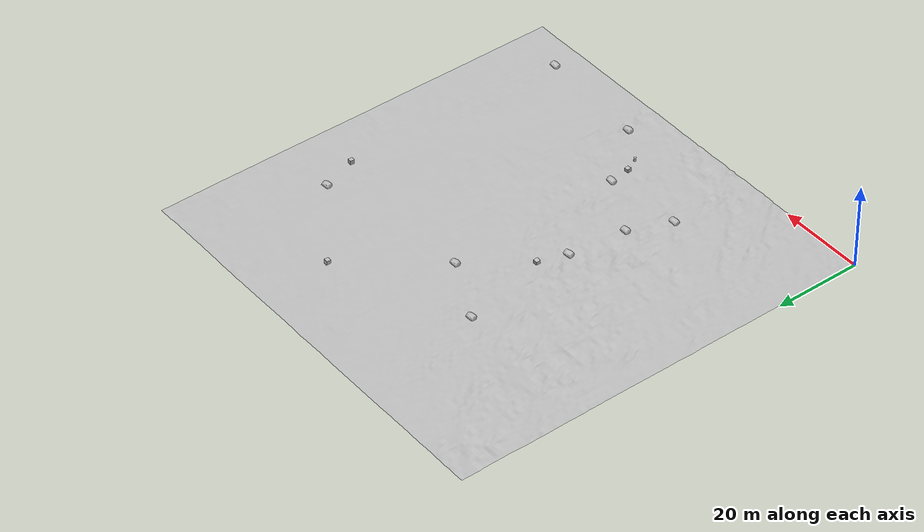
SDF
<sdf version="1.4">
 <world name="default">
  <include><uri>model://sun</uri></include>
  <scene>
   <sky><time>10</time><clouds><speed>5</speed><direction>1.14</direction><humidity>0.3</humidity></clouds></sky>
  </scene>
  <include><uri>model://srvss_terrain1</uri></include>
  <include>
   <uri>model://rock1</uri>
   <pose>38.498 42.9853 0.135408 -0.0690086 -0.00288347 0.09819</pose>
   <scale>3.26647 3.26647 3.26647</scale>
   <name>object0</name>
  </include>
  <include>
   <uri>model://rock1</uri>
   <pose>33.0939 19.9607 0.202484 0.0887613 -0.0952056 -0.025514</pose>
   <scale>4.94697 4.94697 4.94697</scale>
   <name>object1</name>
  </include>
  <include>
   <uri>model://cube1</uri>
   <pose>38.8941 49.035 0.342254 -0.0889441 -0.0839707 0.0203672</pose>
   <scale>1.27788 1.27788 1.27788</scale>
   <name>object2</name>
  </include>
  <include>
   <uri>model://rock1</uri>
   <pose>85.7588 68.1713 0.16207 0.0360686 0.0490892 0.0290427</pose>
   <scale>1.38152 1.38152 1.38152</scale>
   <name>object4</name>
  </include>
  <include>
   <uri>model://cube1</uri>
   <pose>87.1606 59.337 0.161598 0.0352617 0.0553567 -0.0990931</pose>
   <scale>4.8606 4.8606 4.8606</scale>
   <name>object5</name>
  </include>
  <include>
   <uri>model://rock1</uri>
   <pose>87.9382 6.48509 0.204472 -0.0092928 -0.0998686 -0.0614576</pose>
   <scale>2.566 2.566 2.566</scale>
   <name>object6</name>
  </include>
  <include>
   <uri>model://rock1</uri>
   <pose>50.8814 21.562 0.225388 0.00358151 -0.0877945 -0.098994</pose>
   <scale>1.64964 1.64964 1.64964</scale>
   <name>object8</name>
  </include>
  <include>
   <uri>model://rock1</uri>
   <pose>35.6286 69.8149 0.210079 0.0325116 0.0371902 0.0208792</pose>
   <scale>1.92257 1.92257 1.92257</scale>
   <name>object9</name>
  </include>
  <include>
   <uri>model://rock1</uri>
   <pose>50.2865 62.4686 0.261468 0.0636836 0.0235537 -0.0217107</pose>
   <scale>2.53048 2.53048 2.53048</scale>
   <name>object11</name>
  </include>
  <include>
   <uri>model://rock1</uri>
   <pose>36.9031 29.4781 0.266919 0.0082543 0.0508857 -0.0790072</pose>
   <scale>2.85484 2.85484 2.85484</scale>
   <name>object12</name>
  </include>
  <include>
   <uri>model://cube1</uri>
   <pose>49.9376 16.2253 0.193489 -0.0691621 0.0900228 0.0857961</pose>
   <scale>2.91321 2.91321 2.91321</scale>
   <name>object13</name>
  </include>
  <include>
   <uri>model://barrel1</uri>
   <pose>52.0709 13.6267 0.261802 -0.0180146 -0.0928671 0.0332701</pose>
   <scale>3.28357 3.28357 3.28357</scale>
   <name>object14</name>
  </include>
  <include>
   <uri>model://cube1</uri>
   <pose>64.911 81.6962 0.125605 0.0697094 -0.0650152 -0.0170972</pose>
   <scale>1.55437 1.55437 1.55437</scale>
   <name>object16</name>
  </include>
  <include>
   <uri>model://rock1</uri>
   <pose>61.3748 8.43569 0.222304 0.0455109 0.0147118 -0.0526768</pose>
   <scale>4.36306 4.36306 4.36306</scale>
   <name>object18</name>
  </include>
 </world>
</sdf>

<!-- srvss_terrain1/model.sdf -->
<sdf version="1.4">
    <model name="terrain">
        <static>true</static>
        <link name="terrain1">
            <pose>0 0 0 0 0 0</pose>
            <collision name="terrain1_collision">
                <geometry>
                    <mesh>
                        <uri>model://srvss_terrain1/meshes/terrain1.dae</uri>
                    </mesh>
                </geometry>
		<surface>
		  <friction>
		    <ode>
		      <mu>100</mu>
		      <mu2>100</mu2>
		    </ode>
		  </friction>
		</surface>
            </collision>
            <visual name="terrain1_visual">
                <geometry>
                    <mesh>
                        <uri>model://srvss_terrain1/meshes/terrain1.dae</uri>
                    </mesh>
                </geometry>
                <material>
                    <script>
                        <uri>model://srvss_terrain1/materials/scripts</uri>
                        <uri>model://srvss_terrain1/materials/textures</uri>
                        <name>terrain/terrain1</name>
                    </script>
                </material>
            </visual>
        </link>
    </model>
</sdf>

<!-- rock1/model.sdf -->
<sdf version="1.4">
  <model name="rock1">
    <static>true</static>
    <link name="link">
      <collision name="collision">
        <geometry>
          <mesh>
		<uri>model://rock1/models/rock1.dae</uri>
		<scale>1 1 1</scale>
          </mesh>
        </geometry>
      </collision>
      <visual name="visual">
         <geometry>
          <mesh>
		<uri>model://rock1/models/rock1.dae</uri>
		<scale>1 1 1</scale>
          </mesh>
        </geometry>
      </visual>
    </link>
  </model>
</sdf>

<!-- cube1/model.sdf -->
<sdf version="1.4">
  <model name="dany">
    <static>true</static>
    <link name="link">
      <collision name="collision">
        <geometry>
          <mesh>
             <uri>model://cube1/models/cube1.dae</uri>
	<scale>1 1 1</scale>
          </mesh>
        </geometry>
      </collision>
      <visual name="visual">
         <geometry>
          <mesh>
		<uri>model://cube1/models/cube1.dae</uri>
	       <scale>1 1 1</scale>
          </mesh>
        </geometry>
      </visual>
    </link>
  </model>
</sdf>

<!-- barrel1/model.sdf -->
<sdf version="1.4">
  <model name="barrel1">
    <static>true</static>
    <link name="link">
      <collision name="collision">
        <geometry>
          <mesh>
		<uri>model://barrel1/models/barrel1.dae</uri>
          </mesh>
        </geometry>
      </collision>
      <visual name="visual">
         <geometry>
          <mesh>
		<uri>model://barrel1/models/barrel1.dae</uri>
          </mesh>
        </geometry>
      </visual>
    </link>
  </model>
</sdf>
